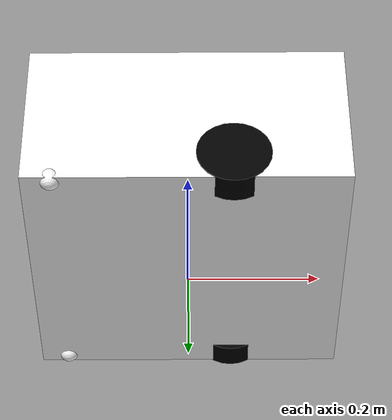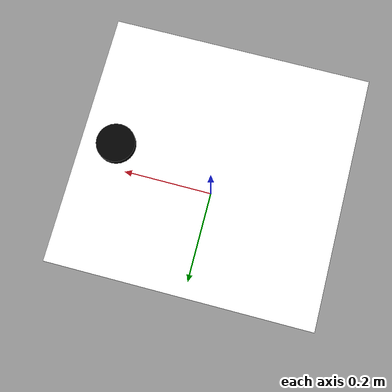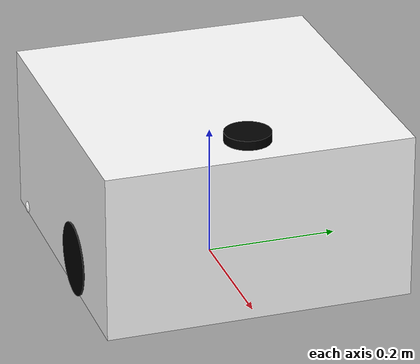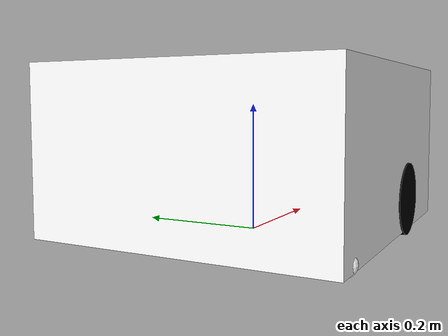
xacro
<?xml version="1.0"?>
<robot name="da" xmlns:xacro="http://www.ros.org/wiki/xacro">

    <xacro:arg name="use_ros2_control" default="true"/>
    <xacro:arg name="use_sim" default="false"/>

	<xacro:property name="mm_to_m" value="0.001"/>

	<xacro:property name="base_link_length" value="${480.1 * mm_to_m}"/>
	<xacro:property name="base_link_width" value="${462 * mm_to_m}"/>
	<xacro:property name="base_link_height" value="${251.7 * mm_to_m}"/>
	<xacro:property name="base_link_ground_clearance" value="${8 * mm_to_m}"/>

	<xacro:property name="wheels_radius" value="${55.5 * mm_to_m}"/>
	<xacro:property name="wheels_width" value="${44 * mm_to_m}"/>
	<xacro:property name="wheels_x_offset" value="${68.9 * mm_to_m}"/>
	<xacro:property name="wheels_spacing" value="${421.6 * mm_to_m}"/>

	<xacro:property name="caster_wheels_radius" value="${16 * mm_to_m}"/>
	<xacro:property name="caster_wheels_x_offset" value="${197 * mm_to_m}"/>
	<xacro:property name="caster_wheels_spacing" value="${436.5 * mm_to_m}"/>

	<xacro:property name="lidar_radius" value="${35 * mm_to_m}"/>
	<xacro:property name="lidar_height" value="${20 * mm_to_m}"/>
	<xacro:property name="lidar_x_offset" value="${175 * mm_to_m}"/>
	<xacro:property name="lidar_z_offset" value="${264 * mm_to_m}"/>
	<xacro:property name="lidar_mass" value="${0.170}"/>

	<xacro:property name="total_mass" value="3.1"/>

	<xacro:include filename="materials.xacro"/>
	<xacro:include filename="da_inertia.xacro"/>
	<xacro:include filename="da_chassis.xacro"/>
	<xacro:include filename="lidar.xacro"/>

	<xacro:include filename="gazebo.xacro"/>
</robot>

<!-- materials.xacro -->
<robot xmlns:xacro="http://www.ros.org/wiki/xacro">

	<material name="white">
        <color rgba="1 1 1 1" />
    </material>

    <material name="black">
        <color rgba="0 0 0 1" />
    </material>

</robot>

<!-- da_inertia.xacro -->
<robot xmlns:xacro="http://www.ros.org/wiki/xacro">

    <xacro:macro name="box_inertia" params="m l w h xyz rpy">
        <inertial>
            <origin xyz="${xyz}" rpy="${rpy}"/>
            <mass value="${m}"/>
            <inertia ixx="${(m/12) * (h*h + l*l)}" ixy="0" ixz="0"
                    iyy="${(m/12) * (w*w + l*l)}" iyz="0"
                    izz="${(m/12) * (w*w + h*h)}"/>
        </inertial>
    </xacro:macro>

    <xacro:macro name="cylinder_inertia" params="m r h xyz rpy">
        <inertial>
            <origin xyz="${xyz}" rpy="${rpy}"/>
            <mass value="${m}" />
            <inertia ixx="${(m/12) * (3*r*r + h*h)}" ixy="0" ixz="0"
                    iyy="${(m/12) * (3*r*r + h*h)}" iyz="0"
                    izz="${(m/2) * (r*r)}"/>
        </inertial>
    </xacro:macro>

    <xacro:macro name="sphere_inertia" params="m r xyz rpy">
        <inertial>
            <origin xyz="${xyz}" rpy="${rpy}"/>
            <mass value="${m}" />
            <inertia ixx="${(2/5) * (m*r*r)}" ixy="0" ixz="0"
                    iyy="${(2/5) * (m*r*r)}" iyz="0"
                    izz="${(2/5) * (m*r*r)}"/>
        </inertial>
    </xacro:macro>

</robot>

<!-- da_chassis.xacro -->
<robot xmlns:xacro="http://www.ros.org/wiki/xacro">

	<link name="base_link">
        <visual>
            <origin xyz="0 0 ${base_link_height / 2.0 + base_link_ground_clearance}"  rpy="0 0 0"/>
            <geometry>
                <box size="${base_link_length} ${base_link_width} ${base_link_height}"/>
            </geometry>
            <material name="white"/>
        </visual>
        <collision>
            <origin xyz="0 0 ${base_link_height / 2.0 + base_link_ground_clearance}"  rpy="0 0 0"/>
            <geometry>
                <box size="${base_link_length} ${base_link_width} ${base_link_height}"/>
            </geometry>
        </collision>
        <xacro:box_inertia m="${total_mass * 0.8 * 0.7}" l="${base_link_length}" w="${base_link_width}" h="${base_link_height}"
                       xyz="0 0 ${base_link_height / 2.0 + base_link_ground_clearance}"  rpy="0 0 0"/>
    </link>

    <link name="right_wheel">
        <visual>
            <origin xyz="0 0 0" rpy="${pi / 2.0} 0 0"/>
            <geometry>
                <cylinder length="${wheels_width}" radius="${wheels_radius}"/>
            </geometry>
            <material name="black"/>
        </visual>
        <collision>
            <origin xyz="0 0 0" rpy="${pi / 2.0} 0 0"/>
            <geometry>
                <cylinder length="${wheels_width}" radius="${wheels_radius}"/>
            </geometry>
        </collision>
        <xacro:cylinder_inertia m="${total_mass * 0.1 * 0.5}" r="${wheels_radius}" h="${wheels_width}"
                            xyz="0 0 0" rpy="${pi / 2.0} 0 0"/>
    </link>

    <link name="left_wheel">
        <visual>
            <origin xyz="0 0 0" rpy="${pi / 2.0} 0 0"/>
            <geometry>
                <cylinder length="${wheels_width}" radius="${wheels_radius}"/>
            </geometry>
            <material name="black"/>
        </visual>
        <collision>
            <origin xyz="0 0 0" rpy="${pi / 2.0} 0 0"/>
            <geometry>
                <cylinder length="${wheels_width}" radius="${wheels_radius}"/>
            </geometry>
        </collision>
        <xacro:cylinder_inertia m="${total_mass * 0.1 * 0.5}" r="${wheels_radius}" h="${wheels_width}"
                            xyz="0 0 0" rpy="${pi / 2.0} 0 0"/>
    </link>

    <link name="right_caster_wheel">
        <visual>
            <origin xyz="0 0 0" rpy="0 0 0"/>
            <geometry>
                <sphere radius="${caster_wheels_radius}"/>
            </geometry>
            <material name="white"/>
        </visual>
        <collision>
            <origin xyz="0 0 0" rpy="0 0 0"/>
            <geometry>
                <sphere radius="${caster_wheels_radius}"/>
            </geometry>
        </collision>
        <xacro:sphere_inertia m="${total_mass * 0.5 * 0.5 * 0.1}" r="${caster_wheels_radius}" xyz="0 0 0" rpy="0 0 0"/>
    </link>

    <link name="left_caster_wheel">
        <visual>
            <origin xyz="0 0 0" rpy="0 0 0"/>
            <geometry>
                <sphere radius="${caster_wheels_radius}"/>
            </geometry>
            <material name="white"/>
        </visual>
        <collision>
            <origin xyz="0 0 0" rpy="0 0 0"/>
            <geometry>
                <sphere radius="${caster_wheels_radius}"/>
            </geometry>
        </collision>
        <xacro:sphere_inertia m="${total_mass * 0.5 * 0.5 * 0.1}" r="${caster_wheels_radius}" xyz="0 0 0" rpy="0 0 0"/>
    </link>

    <joint name="right_wheel_joint" type="continuous">
	    <parent link="base_link"/>
	    <child link="right_wheel"/>
	    <origin xyz="${wheels_x_offset} -${wheels_spacing / 2.0} ${wheels_radius}" rpy="0 0 0"/>
	    <axis xyz="0 1 0"/>
        <dynamics damping="0.1" friction="0.2"/>
	</joint>

	<joint name="left_wheel_joint" type="continuous">
	    <parent link="base_link"/>
	    <child link="left_wheel"/>
	    <origin xyz="${wheels_x_offset} ${wheels_spacing / 2.0} ${wheels_radius}" rpy="0 0 0"/>
	    <axis xyz="0 1 0"/>
        <dynamics damping="0.1" friction="0.2"/>
	</joint>

    <joint name="right_caster_wheel_joint" type="fixed">
	    <parent link="base_link"/>
	    <child link="right_caster_wheel"/>
	    <origin xyz="-${caster_wheels_x_offset} -${caster_wheels_spacing / 2.0} ${caster_wheels_radius}" rpy="0 0 0"/>
	</joint>

    <joint name="left_caster_wheel_joint" type="fixed">
        <parent link="base_link"/>
        <child link="left_caster_wheel"/>
        <origin xyz="-${caster_wheels_x_offset} ${caster_wheels_spacing / 2.0} ${caster_wheels_radius}" rpy="0 0 0"/>
    </joint>

</robot>

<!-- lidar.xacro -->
<robot name="da" xmlns:xacro="http://www.ros.org/wiki/xacro">

    <link name="laser">
        <visual>
            <origin xyz="0 0 0" rpy="0 0 0"/>
            <geometry>
                <cylinder radius="${lidar_radius}" length="${lidar_height}"/>
            </geometry>
            <material name="black"/>
        </visual>
        <collision>
            <origin xyz="0 0 0" rpy="0 0 0"/>
            <geometry>
                <cylinder radius="${lidar_radius}" length="${lidar_height}"/>
            </geometry>
        </collision>
        <xacro:cylinder_inertia m="${lidar_mass}" r="${lidar_radius}" h="${lidar_height}"
                            xyz="0 0 0" rpy="0 0 0"/>
    </link>

    <joint name="laser_joint" type="fixed">
        <parent link="base_link"/>
        <child link="laser"/>
        <origin xyz="${lidar_x_offset} 0 ${lidar_z_offset}" rpy="0 0 -${pi / 2.0}"/>
    </joint>

    <gazebo reference="laser">
        <sensor name="laser" type="ray">
            <always_on>true</always_on>
            <visualize>true</visualize>
            <update_rate>5</update_rate>
            <ray>
            <scan>
                <horizontal>
                <samples>360</samples>
                <resolution>1.000000</resolution>
                <min_angle>0.000000</min_angle>
                <max_angle>6.280000</max_angle>
                </horizontal>
            </scan>
            <range>
                <min>0.120000</min>
                <max>3.5</max>
                <resolution>0.015000</resolution>
            </range>
            <noise>
                <type>gaussian</type>
                <mean>0.0</mean>
                <stddev>0.01</stddev>
            </noise>
            </ray>
            <plugin name="scan" filename="libgazebo_ros_ray_sensor.so">
            <ros>
                <remapping>~/out:=scan</remapping>
            </ros>
            <output_type>sensor_msgs/LaserScan</output_type>
            <frame_name>laser</frame_name>
            </plugin>
        </sensor>
    </gazebo>
</robot>
